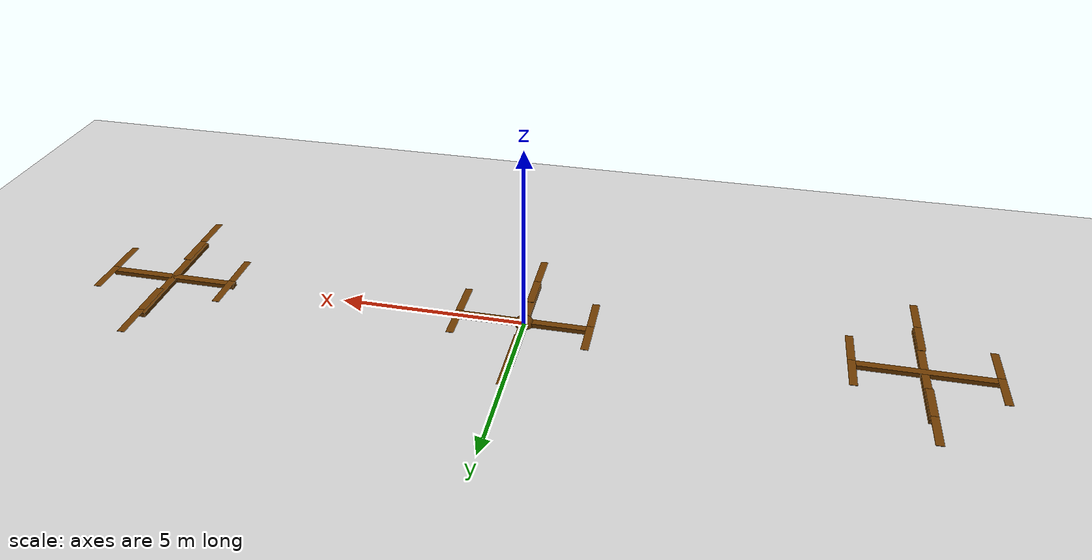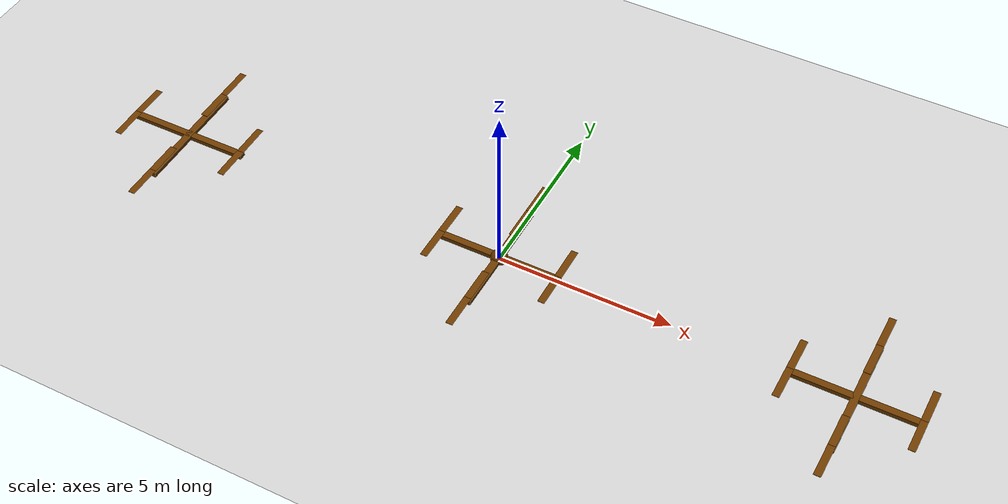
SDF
<?xml version="1.0" ?>
<sdf version="1.5">
  <world name="default">
    <physics type="ode">
      <gravity>0.0 0.0 -10.0</gravity>
      <ode>
        <solver>
          <type>quick</type>
          <iters>50</iters>
          <sor>0.8</sor>
        </solver>
        <constraints>
          <cfm>0.0</cfm>
          <erp>0.2</erp>
          <contact_max_correcting_vel>0.1</contact_max_correcting_vel>
          <contact_surface_layer>0.0</contact_surface_layer>
        </constraints>
      </ode>
      <real_time_factor>1</real_time_factor>
      <real_time_update_rate>0</real_time_update_rate>
      <max_step_size>0.001</max_step_size>
    </physics>
    <include>
      <uri>model://sun</uri>
    </include>

    <model name="ground_plane">
      <static>true</static>
      <link name="link">
        <collision name="collision">
          <geometry>
            <plane>
              <normal>0 0 1</normal>
              <size>1000 1000</size>
            </plane>
          </geometry>
          <surface>
            <friction>
              <ode>
                <mu>1</mu>
                <mu2>1</mu2>
              </ode>
            </friction>
          </surface>
        </collision>
        <visual name="visual">
          <cast_shadows>false</cast_shadows>
          <geometry>
            <plane>
              <normal>0 0 1</normal>
              <size>1000 1000</size>
            </plane>
          </geometry>
          <material>
            <script>
              <uri>file://media/materials/scripts/gazebo.material</uri>
              <name>Gazebo/Grey</name>
            </script>
          </material>
        </visual>
      </link>
    </model>

	<include>
		<uri>model://track_ball</uri>
		<pose>0 0 0 0 0 0</pose>
	</include>

	<include>
		<uri>model://quad_2292_1</uri>
		<pose>0 0 0 0 0 0</pose>
	</include>
	<include>
		<uri>model://quad_2292_2</uri>
		<pose>-10 0 0 0 0 0</pose>
	</include>
	<include>
		<uri>model://quad_2292_3</uri>
		<pose>10 0 0 0 0 0</pose>
	</include>
   </world>
</sdf>

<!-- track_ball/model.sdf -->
<sdf version="1.5">
	<model name="track_ball">
	  <pose>0 0 0.0 0 0 0</pose>
	  <static>false</static>

	  <link name="ball">
		<gravity>0</gravity>
		<pose>0 0 0 0 0 0</pose>
		<visual name="visual">
		  <geometry>
			<sphere>
			  <radius>0.25</radius>
			</sphere>
		  </geometry>
		  <material>
			<ambient>0.2 0.2 0.2 1.0</ambient>
			<diffuse>.421 0.225 0.0 1.0</diffuse>
		  </material>
		</visual>
	  </link>

	  <link name="x_axis">
		 <gravity>0</gravity>
		<pose>0.5 0 0 0 0 0</pose>
		<visual name="visual">
		  <geometry>
			<box>
			  <size>1 0.1 0.1</size>
			</box>
		  </geometry>
		  <material>
			<ambient>1.0 0.0 0.0 1.0</ambient>
			<diffuse>1.0 0.0 0.0 1.0</diffuse>
		  </material>
		</visual>
	  </link>

	  <link name="y_axis">
		<gravity>0</gravity>
		<pose>0 0.5 0 0 0 0</pose>
		<visual name="visual">
		  <geometry>
			<box>
			  <size>0.1 1 0.1</size>
			</box>
		  </geometry>
		  <material>
			<ambient>0.0 1.0 0.0 1.0</ambient>
			<diffuse>0.0 1.0 0.0 1.0</diffuse>
		  </material>
		</visual>
	  </link>

	  <link name="z_axis">
		<gravity>0</gravity>
		<pose>0 0 0.5 0 0 0</pose>
		<visual name="visual">
		  <geometry>
			<box>
			  <size>0.1 0.1 1</size>
			</box>
		  </geometry>
		  <material>
			<ambient>0.0 0.0 1.0 1.0</ambient>
			<diffuse>0.0 0.0 1.0 1.0</diffuse>
		  </material>
		</visual>
	  </link>

	  <joint name="x_joint" type="revolute">
		<parent>ball</parent>
		<child>x_axis</child>
		<pose>0.0 0.0 0.0 0.0 0.0 0.0</pose>
		<axis>
		  <limit>
			<lower>0</lower>
			<upper>0</upper>
		  </limit>
		  <xyz>1.0 0.0 0.0</xyz>
		</axis>
	  </joint>

	  <joint name="y_joint" type="revolute">
		<parent>ball</parent>
		<child>y_axis</child>
		<pose>0.0 0.0 0.0 0.0 0.0 0.0</pose>
		<axis>
		  <limit>
			<lower>0</lower>
			<upper>0</upper>
		  </limit>
		  <xyz>0.0 1.0 0.0</xyz>
		</axis>
	  </joint>

	  <joint name="z_joint" type="revolute">
		<parent>ball</parent>
		<child>z_axis</child>
		<pose>0.0 0.0 0.0 0.0 0.0 0.0</pose>
		<axis>
		  <limit>
			<lower>0</lower>
			<upper>0</upper>
		  </limit>
		  <xyz>0.0 0.0 1.0</xyz>
		</axis>
	  </joint>

	</model>
</sdf>

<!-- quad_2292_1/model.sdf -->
<sdf version="1.5">
	<model name="quad_2292_1">
	  <pose>0 0 0.1 0 0 0</pose>
	  <static>false</static>
	  <link name="body_1">
		<pose>0 0 0 0 0 0</pose>
		<inertial>
		  <pose>0.0 0.0 0.0 0.0 0.0 0.0</pose>
		  <inertia>
			<ixx>1.8</ixx>
			<ixy>0.0</ixy>
			<ixz>0.0</ixz>
			<iyy>10.8</iyy>
			<iyz>0.0</iyz>
			<izz>10.8</izz>
		  </inertia>
		  <mass>10.0</mass>
		</inertial>
		<collision name="collision">
		  <geometry>
			<box>
			  <size>3.6 0.2 0.2</size>
			</box>
		  </geometry>
		  <surface>
			<friction>
			  <ode>
				<mu>0.1</mu>
				<mu2>0.1</mu2>
			  </ode>
			</friction>
		  </surface>
		</collision>
		<visual name="visual">
		  <geometry>
			<box>
			  <size>3.6 0.2 0.2</size>
			</box>
		  </geometry>
		  <material>
			<ambient>0.2 0.2 0.2 1.0</ambient>
			<diffuse>.421 0.225 0.0 1.0</diffuse>
		  </material>
		</visual>
		<sensor name='imu_sensor' type='imu'>
		  <always_on>1</always_on>
		  <update_rate>1000</update_rate>
		  <imu>
			<noise>
			  <type>gaussian</type>
			  <rate>
				<mean>0</mean>
				<stddev>0.0002</stddev>
				<bias_mean>7.5e-06</bias_mean>
				<bias_stddev>8e-07</bias_stddev>
			  </rate>
			  <accel>
				<mean>0</mean>
				<stddev>0.017</stddev>
				<bias_mean>0.1</bias_mean>
				<bias_stddev>0.001</bias_stddev>
			  </accel>
			</noise>
		  </imu>
		  <pose>0 0 0 0 0 0</pose>
		</sensor>
	  </link>
	  <link name="body_2">
		<pose>0 0 0 0 0 0</pose>
		<inertial>
		  <pose>0.0 0.0 0.0 0.0 0.0 0.0</pose>
		  <inertia>
			<ixx>10.8</ixx>
			<ixy>0.0</ixy>
			<ixz>0.0</ixz>
			<iyy>1.8</iyy>
			<iyz>0.0</iyz>
			<izz>10.8</izz>
		  </inertia>
		  <mass>10.0</mass>
		</inertial>
		<collision name="collision">
		  <geometry>
			<box>
			  <size>0.2 3.6 0.2</size>
			</box>
		  </geometry>
		  <surface>
			<friction>
			  <ode>
				<mu>0.1</mu>
				<mu2>0.1</mu2>
			  </ode>
			</friction>
		  </surface>
		</collision>
		<visual name="visual">
		  <geometry>
			<box>
			  <size>0.2 3.6 0.2</size>
			</box>
		  </geometry>
		  <material>
			<ambient>0.2 0.2 0.2 1.0</ambient>
			<diffuse>.421 0.225 0.0 1.0</diffuse>
		  </material>
		</visual>
	  </link>
	  <joint name="body_joint" type="revolute">
		<parent>body_1</parent>
		<child>body_2</child>
		<pose>0.0 0.0 0.0 0.0 0.0 0.0</pose>
		<axis>
		  <limit>
			<lower>0</lower>
			<upper>0</upper>
		  </limit>
		  <xyz>0.0 0.0 1.0</xyz>
		  <dynamics>
			<damping>0.0001</damping>
		  </dynamics>
		</axis>
		<physics>
		  <ode>
			<cfm_damping>1</cfm_damping>
		  </ode>
		</physics>
	  </joint>

	<!-- Motor/Prop 1 -->
	  <link name="rod_1">
		<pose>-1.75 0 0.14 0 0 0</pose>
		<inertial>
		  <pose>0.0 0.0 0 0.0 0.0 0.0</pose>
		  <inertia>
			<ixx>0.012</ixx>
			<ixy>0.0</ixy>
			<ixz>0.0</ixz>
			<iyy>0.012</iyy>
			<iyz>0.0</iyz>
			<izz>0.0012</izz>
		  </inertia>
		  <mass>1.0</mass>
		</inertial>
		<collision name="collision">
		  <geometry>
			<box>
			  <size>0.02 0.02 0.08</size>
			</box>
		  </geometry>
		</collision>
		<visual name="visual">
		  <geometry>
			<box>
			  <size>0.02 0.02 0.08</size>
			</box>
		  </geometry>
		  <material>
			<ambient>0.3 0.3 0.3 1.0</ambient>
			<diffuse>.421 0.225 0.0 1.0</diffuse>
		  </material>
		</visual>
	  </link>
	  <link name="blade_1">
		<pose>-1.75 0 0.18 0 0 0</pose>
		<inertial>
		  <pose>0.0 0.25 0 0.0 0.0 0.0</pose>
		  <inertia>
			<ixx>0.0000465</ixx>
			<ixy>0.0</ixy>
			<ixz>0.0</ixz>
			<iyy>0.0000006</iyy>
			<iyz>0.0</iyz>
			<izz>0.0000470</izz>
		  </inertia>
		  <mass>0.01</mass>
		</inertial>
		<collision name="collision">
		  <pose>0.0 0.5 0 0.0 0.0 0.0</pose>
		  <geometry>
			<box>
			  <size>0.2 1.0 0.01</size>
			</box>
		  </geometry>
		</collision>
		<visual name="visual">
		  <pose>0.0 0.5 0 0.0 0.0 0.0</pose>
		  <geometry>
			<box>
			  <size>0.2 1.0 0.01</size>
			</box>
		  </geometry>
		  <material>
			<ambient>0.5 0.2 0.2 1.0</ambient>
			<diffuse>.421 0.225 0.0 1.0</diffuse>
		  </material>
		</visual>
	  </link>
	  <link name="blade_2">
		<pose>-1.75 0 0.18 0 0 3.141593</pose>
		<inertial>
		  <pose>0.0 0.25 0 0.0 0.0 0.0</pose>
		  <inertia>
			<ixx>0.0000465</ixx>
			<ixy>0.0</ixy>
			<ixz>0.0</ixz>
			<iyy>0.0000006</iyy>
			<iyz>0.0</iyz>
			<izz>0.0000470</izz>
		  </inertia>
		  <mass>0.01</mass>
		</inertial>
		<collision name="collision">
		  <pose>0.0 0.5 0 0.0 0.0 0.0</pose>
		  <geometry>
			<box>
			  <size>0.2 1.0 0.01</size>
			</box>
		  </geometry>
		</collision>
		<visual name="visual">
		  <pose>0.0 0.5 0 0.0 0.0 0</pose>
		  <geometry>
			<box>
			  <size>0.2 1.0 0.01</size>
			</box>
		  </geometry>
		  <material>
			<ambient>0.2 0.5 0.2 1.0</ambient>
			<diffuse>.421 0.225 0.0 1.0</diffuse>
		  </material>
		</visual>
	  </link>
	  <joint name="rod_1_joint" type="revolute">
		<parent>body_1</parent>
		<child>rod_1</child>
		<pose>0.0 0.0 0.0 0.0 0.0 0.0</pose>
		<axis>
		  <limit>
			<lower>-1e16</lower>
			<upper>1e16</upper>
		  </limit>
		  <xyz>0.0 0.0 -1.0</xyz>
		  <dynamics>
			<damping>0.0001</damping>
		  </dynamics>
		</axis>
		<physics>
		  <ode>
			<cfm_damping>1</cfm_damping>
		  </ode>
		</physics>
	  </joint>
	  <joint name="blade_1_joint" type="revolute">
		<parent>rod_1</parent>
		<child>blade_1</child>
		<pose>0.0 0.0 0.0 0.0 0.0 0.0</pose>
		<axis>
		  <limit>
			<lower>-0.0</lower>
			<upper>0.0</upper>
		  </limit>
		  <xyz>1.0 0.0 0.0</xyz>
		  <dynamics>
			<damping>1.000000</damping>
		  </dynamics>
		</axis>
		<physics>
		  <ode>
			<limit>
			  <cfm>0.004</cfm>
			  <erp>0.2</erp>
			</limit>
			<cfm_damping>1</cfm_damping>
		  </ode>
		</physics>
	  </joint>
	  <joint name="blade_2_joint" type="revolute">
		<parent>rod_1</parent>
		<child>blade_2</child>
		<pose>0.0 0.0 0.0 0.0 0.0 0.0</pose>
		<axis>
		  <limit>
			<lower>-0.0</lower>
			<upper>0.0</upper>
		  </limit>
		  <xyz>1.0 0.0 0.0</xyz>
		  <dynamics>
			<damping>1.000000</damping>
		  </dynamics>
		</axis>
		<physics>
		  <ode>
			<limit>
			  <cfm>0.004</cfm>
			  <erp>0.2</erp>
			</limit>
			<cfm_damping>1</cfm_damping>
		  </ode>
		</physics>
	  </joint>

	<!-- /Motor/Prop 1 -->

	<!-- Motor/Prop 2 -->
	  <link name="rod_2">
		<pose>1.75 0 0.14 0 0 0</pose>
		<inertial>
		  <pose>0.0 0.0 0 0.0 0.0 0.0</pose>
		  <inertia>
			<ixx>0.012</ixx>
			<ixy>0.0</ixy>
			<ixz>0.0</ixz>
			<iyy>0.012</iyy>
			<iyz>0.0</iyz>
			<izz>0.0012</izz>
		  </inertia>
		  <mass>1.0</mass>
		</inertial>
		<collision name="collision">
		  <geometry>
			<box>
			  <size>0.02 0.02 0.08</size>
			</box>
		  </geometry>
		</collision>
		<visual name="visual">
		  <geometry>
			<box>
			  <size>0.02 0.02 0.08</size>
			</box>
		  </geometry>
		  <material>
			<ambient>0.3 0.3 0.3 1.0</ambient>
			<diffuse>.421 0.225 0.0 1.0</diffuse>
		  </material>
		</visual>
	  </link>
	  <link name="blade_3">
		<pose>1.75 0 0.18 0 0 0</pose>
		<inertial>
		  <pose>0.0 0.25 0 0.0 0.0 0.0</pose>
		  <inertia>
			<ixx>0.0000465</ixx>
			<ixy>0.0</ixy>
			<ixz>0.0</ixz>
			<iyy>0.0000006</iyy>
			<iyz>0.0</iyz>
			<izz>0.0000470</izz>
		  </inertia>
		  <mass>0.01</mass>
		</inertial>
		<collision name="collision">
		  <pose>0.0 0.5 0 0.0 0.0 0.0</pose>
		  <geometry>
			<box>
			  <size>0.2 1.0 0.01</size>
			</box>
		  </geometry>
		</collision>
		<visual name="visual">
		  <pose>0.0 0.5 0 0.0 0.0 0.0</pose>
		  <geometry>
			<box>
			  <size>0.2 1.0 0.01</size>
			</box>
		  </geometry>
		  <material>
			<ambient>0.5 0.2 0.2 1.0</ambient>
			<diffuse>.421 0.225 0.0 1.0</diffuse>
		  </material>
		</visual>
	  </link>
	  <link name="blade_4">
		<pose>1.75 0 0.18 0 0 3.141593</pose>
		<inertial>
		  <pose>0.0 0.25 0 0.0 0.0 0.0</pose>
		  <inertia>
			<ixx>0.0000465</ixx>
			<ixy>0.0</ixy>
			<ixz>0.0</ixz>
			<iyy>0.0000006</iyy>
			<iyz>0.0</iyz>
			<izz>0.0000470</izz>
		  </inertia>
		  <mass>0.01</mass>
		</inertial>
		<collision name="collision">
		  <pose>0.0 0.5 0 0.0 0.0 0.0</pose>
		  <geometry>
			<box>
			  <size>0.2 1.0 0.01</size>
			</box>
		  </geometry>
		</collision>
		<visual name="visual">
		  <pose>0.0 0.5 0 0.0 0.0 0</pose>
		  <geometry>
			<box>
			  <size>0.2 1.0 0.01</size>
			</box>
		  </geometry>
		  <material>
			<ambient>0.2 0.5 0.2 1.0</ambient>
			<diffuse>.421 0.225 0.0 1.0</diffuse>
		  </material>
		</visual>
	  </link>
	  <joint name="rod_2_joint" type="revolute">
		<parent>body_1</parent>
		<child>rod_2</child>
		<pose>0.0 0.0 0.0 0.0 0.0 0.0</pose>
		<axis>
		  <limit>
			<lower>-1e16</lower>
			<upper>1e16</upper>
		  </limit>
		  <xyz>0.0 0.0 -1.0</xyz>
		  <dynamics>
			<damping>0.0001</damping>
		  </dynamics>
		</axis>
		<physics>
		  <ode>
			<cfm_damping>1</cfm_damping>
		  </ode>
		</physics>
	  </joint>
	  <joint name="blade_3_joint" type="revolute">
		<parent>rod_2</parent>
		<child>blade_3</child>
		<pose>0.0 0.0 0.0 0.0 0.0 0.0</pose>
		<axis>
		  <limit>
			<lower>-0.0</lower>
			<upper>0.0</upper>
		  </limit>
		  <xyz>1.0 0.0 0.0</xyz>
		  <dynamics>
			<damping>1.000000</damping>
		  </dynamics>
		</axis>
		<physics>
		  <ode>
			<limit>
			  <cfm>0.004</cfm>
			  <erp>0.2</erp>
			</limit>
			<cfm_damping>1</cfm_damping>
		  </ode>
		</physics>
	  </joint>
	  <joint name="blade_4_joint" type="revolute">
		<parent>rod_2</parent>
		<child>blade_4</child>
		<pose>0.0 0.0 0.0 0.0 0.0 0.0</pose>
		<axis>
		  <limit>
			<lower>-0.0</lower>
			<upper>0.0</upper>
		  </limit>
		  <xyz>1.0 0.0 0.0</xyz>
		  <dynamics>
			<damping>1.000000</damping>
		  </dynamics>
		</axis>
		<physics>
		  <ode>
			<limit>
			  <cfm>0.004</cfm>
			  <erp>0.2</erp>
			</limit>
			<cfm_damping>1</cfm_damping>
		  </ode>
		</physics>
	  </joint>
	<!-- /Motor/Prop 2 -->
	  <plugin name="quad_2292_1_blade_1" filename="libLiftDragPlugin.so">
		<a0>0.1</a0>
		<cla>0.100</cla>
		<cda>0.01</cda>
		<cma>0.00</cma>
		<alpha_stall>0.2</alpha_stall>
		<cla_stall>-0.2</cla_stall>
		<cda_stall>1.0</cda_stall>
		<cma_stall>0.0</cma_stall>
		<cp>0.0 0.5 0</cp>
		<area>0.2</area>
		<air_density>1.2041</air_density>
		<forward>1 0 0</forward>
		<upward>0 0 1</upward>
		<link_name>quad_2292_1::blade_1</link_name>
	  </plugin>
	  <plugin name="quad_2292_1_blade_2" filename="libLiftDragPlugin.so">
		<a0>0.1</a0>
		<cla>0.100</cla>
		<cda>0.01</cda>
		<cma>0.00</cma>
		<alpha_stall>0.2</alpha_stall>
		<cla_stall>-0.2</cla_stall>
		<cda_stall>1.0</cda_stall>
		<cma_stall>0.0</cma_stall>
		<cp>0.0 0.5 0</cp>
		<area>0.2</area>
		<air_density>1.2041</air_density>
		<forward>1 0 0</forward>
		<upward>0 0 1</upward>
		<link_name>quad_2292_1::blade_2</link_name>
	  </plugin>
	  <plugin name="quad_2292_1_blade_3" filename="libLiftDragPlugin.so">
		<a0>0.1</a0>
		<cla>0.100</cla>
		<cda>0.01</cda>
		<cma>0.00</cma>
		<alpha_stall>0.2</alpha_stall>
		<cla_stall>-0.2</cla_stall>
		<cda_stall>1.0</cda_stall>
		<cma_stall>0.0</cma_stall>
		<cp>0.0 0.5 0</cp>
		<area>0.2</area>
		<air_density>1.2041</air_density>
		<forward>1 0 0</forward>
		<upward>0 0 1</upward>
		<link_name>quad_2292_1::blade_3</link_name>
	  </plugin>
	  <plugin name="quad_2292_1_blade_4" filename="libLiftDragPlugin.so">
		<a0>0.1</a0>
		<cla>0.100</cla>
		<cda>0.01</cda>
		<cma>0.00</cma>
		<alpha_stall>0.2</alpha_stall>
		<cla_stall>-0.2</cla_stall>
		<cda_stall>1.0</cda_stall>
		<cma_stall>0.0</cma_stall>
		<cp>0.0 0.5 0</cp>
		<area>0.2</area>
		<air_density>1.2041</air_density>
		<forward>1 0 0</forward>
		<upward>0 0 1</upward>
		<link_name>quad_2292_1::blade_4</link_name>
	  </plugin>

	<!-- Motor/Prop 3 -->
	  <link name="rod_3">
		<pose>0 -1.75 0.14 0 0 0</pose>
		<inertial>
		  <pose>0.0 0.0 0 0.0 0.0 0.0</pose>
		  <inertia>
			<ixx>0.012</ixx>
			<ixy>0.0</ixy>
			<ixz>0.0</ixz>
			<iyy>0.012</iyy>
			<iyz>0.0</iyz>
			<izz>0.0012</izz>
		  </inertia>
		  <mass>1.0</mass>
		</inertial>
		<collision name="collision">
		  <geometry>
			<box>
			  <size>0.02 0.02 0.08</size>
			</box>
		  </geometry>
		</collision>
		<visual name="visual">
		  <geometry>
			<box>
			  <size>0.02 0.02 0.08</size>
			</box>
		  </geometry>
		  <material>
			<ambient>0.3 0.3 0.3 1.0</ambient>
			<diffuse>.421 0.225 0.0 1.0</diffuse>
		  </material>
		</visual>
	  </link>
	  <link name="blade_5">
		<pose>0 -1.75 0.18 0 0 0</pose>
		<inertial>
		  <pose>0.0 0.25 0 0.0 0.0 0.0</pose>
		  <inertia>
			<ixx>0.0000465</ixx>
			<ixy>0.0</ixy>
			<ixz>0.0</ixz>
			<iyy>0.0000006</iyy>
			<iyz>0.0</iyz>
			<izz>0.0000470</izz>
		  </inertia>
		  <mass>0.01</mass>
		</inertial>
		<collision name="collision">
		  <pose>0.0 0.5 0 0.0 0.0 0.0</pose>
		  <geometry>
			<box>
			  <size>0.2 1.0 0.01</size>
			</box>
		  </geometry>
		</collision>
		<visual name="visual">
		  <pose>0.0 0.5 0 0.0 0.0 0.0</pose>
		  <geometry>
			<box>
			  <size>0.2 1.0 0.01</size>
			</box>
		  </geometry>
		  <material>
			<ambient>0.5 0.2 0.2 1.0</ambient>
			<diffuse>.421 0.225 0.0 1.0</diffuse>
		  </material>
		</visual>
	  </link>
	  <link name="blade_6">
		<pose>0 -1.75 0.18 0 0 3.141593</pose>
		<inertial>
		  <pose>0.0 0.25 0 0.0 0.0 0.0</pose>
		  <inertia>
			<ixx>0.0000465</ixx>
			<ixy>0.0</ixy>
			<ixz>0.0</ixz>
			<iyy>0.0000006</iyy>
			<iyz>0.0</iyz>
			<izz>0.0000470</izz>
		  </inertia>
		  <mass>0.01</mass>
		</inertial>
		<collision name="collision">
		  <pose>0.0 0.5 0 0.0 0.0 0.0</pose>
		  <geometry>
			<box>
			  <size>0.2 1.0 0.01</size>
			</box>
		  </geometry>
		</collision>
		<visual name="visual">
		  <pose>0.0 0.5 0 0.0 0.0 0</pose>
		  <geometry>
			<box>
			  <size>0.2 1.0 0.01</size>
			</box>
		  </geometry>
		  <material>
			<ambient>0.2 0.5 0.2 1.0</ambient>
			<diffuse>.421 0.225 0.0 1.0</diffuse>
		  </material>
		</visual>
	  </link>
	  <joint name="rod_3_joint" type="revolute">
		<parent>body_2</parent>
		<child>rod_3</child>
		<pose>0.0 0.0 0.0 0.0 0.0 0.0</pose>
		<axis>
		  <limit>
			<lower>-1e16</lower>
			<upper>1e16</upper>
		  </limit>
		  <xyz>0.0 0.0 1.0</xyz>
		  <dynamics>
			<damping>0.0001</damping>
		  </dynamics>
		</axis>
		<physics>
		  <ode>
			<cfm_damping>1</cfm_damping>
		  </ode>
		</physics>
	  </joint>
	  <joint name="blade_5_joint" type="revolute">
		<parent>rod_3</parent>
		<child>blade_5</child>
		<pose>0.0 0.0 0.0 0.0 0.0 0.0</pose>
		<axis>
		  <limit>
			<lower>-0.0</lower>
			<upper>0.0</upper>
		  </limit>
		  <xyz>1.0 0.0 0.0</xyz>
		  <dynamics>
			<damping>1.000000</damping>
		  </dynamics>
		</axis>
		<physics>
		  <ode>
			<limit>
			  <cfm>0.004</cfm>
			  <erp>0.2</erp>
			</limit>
			<cfm_damping>1</cfm_damping>
		  </ode>
		</physics>
	  </joint>
	  <joint name="blade_6_joint" type="revolute">
		<parent>rod_3</parent>
		<child>blade_6</child>
		<pose>0.0 0.0 0.0 0.0 0.0 0.0</pose>
		<axis>
		  <limit>
			<lower>-0.0</lower>
			<upper>0.0</upper>
		  </limit>
		  <xyz>1.0 0.0 0.0</xyz>
		  <dynamics>
			<damping>1.000000</damping>
		  </dynamics>
		</axis>
		<physics>
		  <ode>
			<limit>
			  <cfm>0.004</cfm>
			  <erp>0.2</erp>
			</limit>
			<cfm_damping>1</cfm_damping>
		  </ode>
		</physics>
	  </joint>
	<!-- /Motor/Prop 3 -->

	<!-- Motor/Prop 4 -->
	  <link name="rod_4">
		<pose>0 1.75 0.14 0 0 0</pose>
		<inertial>
		  <pose>0.0 0.0 0 0.0 0.0 0.0</pose>
		  <inertia>
			<ixx>0.012</ixx>
			<ixy>0.0</ixy>
			<ixz>0.0</ixz>
			<iyy>0.012</iyy>
			<iyz>0.0</iyz>
			<izz>0.0012</izz>
		  </inertia>
		  <mass>1.0</mass>
		</inertial>
		<collision name="collision">
		  <geometry>
			<box>
			  <size>0.02 0.02 0.08</size>
			</box>
		  </geometry>
		</collision>
		<visual name="visual">
		  <geometry>
			<box>
			  <size>0.02 0.02 0.08</size>
			</box>
		  </geometry>
		  <material>
			<ambient>0.3 0.3 0.3 1.0</ambient>
			<diffuse>.421 0.225 0.0 1.0</diffuse>
		  </material>
		</visual>
	  </link>
	  <link name="blade_7">
		<pose>0 1.75 0.18 0 0 0</pose>
		<inertial>
		  <pose>0.0 0.25 0 0.0 0.0 0.0</pose>
		  <inertia>
			<ixx>0.0000465</ixx>
			<ixy>0.0</ixy>
			<ixz>0.0</ixz>
			<iyy>0.0000006</iyy>
			<iyz>0.0</iyz>
			<izz>0.0000470</izz>
		  </inertia>
		  <mass>0.01</mass>
		</inertial>
		<collision name="collision">
		  <pose>0.0 0.5 0 0.0 0.0 0.0</pose>
		  <geometry>
			<box>
			  <size>0.2 1.0 0.01</size>
			</box>
		  </geometry>
		</collision>
		<visual name="visual">
		  <pose>0.0 0.5 0 0.0 0.0 0.0</pose>
		  <geometry>
			<box>
			  <size>0.2 1.0 0.01</size>
			</box>
		  </geometry>
		  <material>
			<ambient>0.5 0.2 0.2 1.0</ambient>
			<diffuse>.421 0.225 0.0 1.0</diffuse>
		  </material>
		</visual>
	  </link>
	  <link name="blade_8">
		<pose>0 1.75 0.18 0 0 3.141593</pose>
		<inertial>
		  <pose>0.0 0.25 0 0.0 0.0 0.0</pose>
		  <inertia>
			<ixx>0.0000465</ixx>
			<ixy>0.0</ixy>
			<ixz>0.0</ixz>
			<iyy>0.0000006</iyy>
			<iyz>0.0</iyz>
			<izz>0.0000470</izz>
		  </inertia>
		  <mass>0.01</mass>
		</inertial>
		<collision name="collision">
		  <pose>0.0 0.5 0 0.0 0.0 0.0</pose>
		  <geometry>
			<box>
			  <size>0.2 1.0 0.01</size>
			</box>
		  </geometry>
		</collision>
		<visual name="visual">
		  <pose>0.0 0.5 0 0.0 0.0 0</pose>
		  <geometry>
			<box>
			  <size>0.2 1.0 0.01</size>
			</box>
		  </geometry>
		  <material>
			<ambient>0.2 0.5 0.2 1.0</ambient>
			<diffuse>.421 0.225 0.0 1.0</diffuse>
		  </material>
		</visual>
	  </link>
	  <joint name="rod_4_joint" type="revolute">
		<parent>body_2</parent>
		<child>rod_4</child>
		<pose>0.0 0.0 0.0 0.0 0.0 0.0</pose>
		<axis>
		  <limit>
			<lower>-1e16</lower>
			<upper>1e16</upper>
		  </limit>
		  <xyz>0.0 0.0 1.0</xyz>
		  <dynamics>
			<damping>0.0001</damping>
		  </dynamics>
		</axis>
		<physics>
		  <ode>
			<cfm_damping>1</cfm_damping>
		  </ode>
		</physics>
	  </joint>
	  <joint name="blade_7_joint" type="revolute">
		<parent>rod_4</parent>
		<child>blade_7</child>
		<pose>0.0 0.0 0.0 0.0 0.0 0.0</pose>
		<axis>
		  <limit>
			<lower>-0.0</lower>
			<upper>0.0</upper>
		  </limit>
		  <xyz>1.0 0.0 0.0</xyz>
		  <dynamics>
			<damping>1.000000</damping>
		  </dynamics>
		</axis>
		<physics>
		  <ode>
			<limit>
			  <cfm>0.004</cfm>
			  <erp>0.2</erp>
			</limit>
			<cfm_damping>1</cfm_damping>
		  </ode>
		</physics>
	  </joint>
	  <joint name="blade_8_joint" type="revolute">
		<parent>rod_4</parent>
		<child>blade_8</child>
		<pose>0.0 0.0 0.0 0.0 0.0 0.0</pose>
		<axis>
		  <limit>
			<lower>-0.0</lower>
			<upper>0.0</upper>
		  </limit>
		  <xyz>1.0 0.0 0.0</xyz>
		  <dynamics>
			<damping>1.000000</damping>
		  </dynamics>
		</axis>
		<physics>
		  <ode>
			<limit>
			  <cfm>0.004</cfm>
			  <erp>0.2</erp>
			</limit>
			<cfm_damping>1</cfm_damping>
		  </ode>
		</physics>
	  </joint>
	<!-- /Motor/Prop 4 -->
	  <plugin name="quad_2292_1_blade_5" filename="libLiftDragPlugin.so">
		<a0>0.1</a0>
		<cla>0.100</cla>
		<cda>0.01</cda>
		<cma>0.00</cma>
		<alpha_stall>0.2</alpha_stall>
		<cla_stall>-0.2</cla_stall>
		<cda_stall>1.0</cda_stall>
		<cma_stall>0.0</cma_stall>
		<cp>0.0 0.5 0</cp>
		<area>0.2</area>
		<air_density>1.2041</air_density>
		<forward>-1 0 0</forward>
		<upward>0 0 1</upward>
		<link_name>quad_2292_1::blade_5</link_name>
	  </plugin>
	  <plugin name="quad_2292_1_blade_6" filename="libLiftDragPlugin.so">
		<a0>0.1</a0>
		<cla>0.100</cla>
		<cda>0.01</cda>
		<cma>0.00</cma>
		<alpha_stall>0.2</alpha_stall>
		<cla_stall>-0.2</cla_stall>
		<cda_stall>1.0</cda_stall>
		<cma_stall>0.0</cma_stall>
		<cp>0.0 0.5 0</cp>
		<area>0.2</area>
		<air_density>1.2041</air_density>
		<forward>-1 0 0</forward>
		<upward>0 0 1</upward>
		<link_name>quad_2292_1::blade_6</link_name>
	  </plugin>
	  <plugin name="quad_2292_1_blade_7" filename="libLiftDragPlugin.so">
		<a0>0.1</a0>
		<cla>0.100</cla>
		<cda>0.01</cda>
		<cma>0.00</cma>
		<alpha_stall>0.2</alpha_stall>
		<cla_stall>-0.2</cla_stall>
		<cda_stall>1.0</cda_stall>
		<cma_stall>0.0</cma_stall>
		<cp>0.0 0.5 0</cp>
		<area>0.2</area>
		<air_density>1.2041</air_density>
		<forward>-1 0 0</forward>
		<upward>0 0 1</upward>
		<link_name>quad_2292_1::blade_7</link_name>
	  </plugin>
	  <plugin name="quad_2292_1_blade_8" filename="libLiftDragPlugin.so">
		<a0>0.1</a0>
		<cla>0.100</cla>
		<cda>0.01</cda>
		<cma>0.00</cma>
		<alpha_stall>0.2</alpha_stall>
		<cla_stall>-0.2</cla_stall>
		<cda_stall>1.0</cda_stall>
		<cma_stall>0.0</cma_stall>
		<cp>0.0 0.5 0</cp>
		<area>0.2</area>
		<air_density>1.2041</air_density>
		<forward>-1 0 0</forward>
		<upward>0 0 1</upward>
		<link_name>quad_2292_1::blade_8</link_name>
	  </plugin>

	</model>
</sdf>

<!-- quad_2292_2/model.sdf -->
<sdf version="1.5">
	<model name="quad_2292_2">
	  <pose>0 0 0.1 0 0 0</pose>
	  <static>false</static>
	  <link name="body_1">
		<pose>0 0 0 0 0 0</pose>
		<inertial>
		  <pose>0.0 0.0 0.0 0.0 0.0 0.0</pose>
		  <inertia>
			<ixx>1.8</ixx>
			<ixy>0.0</ixy>
			<ixz>0.0</ixz>
			<iyy>10.8</iyy>
			<iyz>0.0</iyz>
			<izz>10.8</izz>
		  </inertia>
		  <mass>10.0</mass>
		</inertial>
		<collision name="collision">
		  <geometry>
			<box>
			  <size>3.6 0.2 0.2</size>
			</box>
		  </geometry>
		  <surface>
			<friction>
			  <ode>
				<mu>0.1</mu>
				<mu2>0.1</mu2>
			  </ode>
			</friction>
		  </surface>
		</collision>
		<visual name="visual">
		  <geometry>
			<box>
			  <size>3.6 0.2 0.2</size>
			</box>
		  </geometry>
		  <material>
			<ambient>0.2 0.2 0.2 1.0</ambient>
			<diffuse>.421 0.225 0.0 1.0</diffuse>
		  </material>
		</visual>
		<sensor name='imu_sensor' type='imu'>
		  <always_on>1</always_on>
		  <update_rate>1000</update_rate>
		  <imu>
			<noise>
			  <type>gaussian</type>
			  <rate>
				<mean>0</mean>
				<stddev>0.0002</stddev>
				<bias_mean>7.5e-06</bias_mean>
				<bias_stddev>8e-07</bias_stddev>
			  </rate>
			  <accel>
				<mean>0</mean>
				<stddev>0.017</stddev>
				<bias_mean>0.1</bias_mean>
				<bias_stddev>0.001</bias_stddev>
			  </accel>
			</noise>
		  </imu>
		  <pose>0 0 0 0 0 0</pose>
		</sensor>
	  </link>
	  <link name="body_2">
		<pose>0 0 0 0 0 0</pose>
		<inertial>
		  <pose>0.0 0.0 0.0 0.0 0.0 0.0</pose>
		  <inertia>
			<ixx>10.8</ixx>
			<ixy>0.0</ixy>
			<ixz>0.0</ixz>
			<iyy>1.8</iyy>
			<iyz>0.0</iyz>
			<izz>10.8</izz>
		  </inertia>
		  <mass>10.0</mass>
		</inertial>
		<collision name="collision">
		  <geometry>
			<box>
			  <size>0.2 3.6 0.2</size>
			</box>
		  </geometry>
		  <surface>
			<friction>
			  <ode>
				<mu>0.1</mu>
				<mu2>0.1</mu2>
			  </ode>
			</friction>
		  </surface>
		</collision>
		<visual name="visual">
		  <geometry>
			<box>
			  <size>0.2 3.6 0.2</size>
			</box>
		  </geometry>
		  <material>
			<ambient>0.2 0.2 0.2 1.0</ambient>
			<diffuse>.421 0.225 0.0 1.0</diffuse>
		  </material>
		</visual>
	  </link>
	  <joint name="body_joint" type="revolute">
		<parent>body_1</parent>
		<child>body_2</child>
		<pose>0.0 0.0 0.0 0.0 0.0 0.0</pose>
		<axis>
		  <limit>
			<lower>0</lower>
			<upper>0</upper>
		  </limit>
		  <xyz>0.0 0.0 1.0</xyz>
		  <dynamics>
			<damping>0.0001</damping>
		  </dynamics>
		</axis>
		<physics>
		  <ode>
			<cfm_damping>1</cfm_damping>
		  </ode>
		</physics>
	  </joint>

	<!-- Motor/Prop 1 -->
	  <link name="rod_1">
		<pose>-1.75 0 0.14 0 0 0</pose>
		<inertial>
		  <pose>0.0 0.0 0 0.0 0.0 0.0</pose>
		  <inertia>
			<ixx>0.012</ixx>
			<ixy>0.0</ixy>
			<ixz>0.0</ixz>
			<iyy>0.012</iyy>
			<iyz>0.0</iyz>
			<izz>0.0012</izz>
		  </inertia>
		  <mass>1.0</mass>
		</inertial>
		<collision name="collision">
		  <geometry>
			<box>
			  <size>0.02 0.02 0.08</size>
			</box>
		  </geometry>
		</collision>
		<visual name="visual">
		  <geometry>
			<box>
			  <size>0.02 0.02 0.08</size>
			</box>
		  </geometry>
		  <material>
			<ambient>0.3 0.3 0.3 1.0</ambient>
			<diffuse>.421 0.225 0.0 1.0</diffuse>
		  </material>
		</visual>
	  </link>
	  <link name="blade_1">
		<pose>-1.75 0 0.18 0 0 0</pose>
		<inertial>
		  <pose>0.0 0.25 0 0.0 0.0 0.0</pose>
		  <inertia>
			<ixx>0.0000465</ixx>
			<ixy>0.0</ixy>
			<ixz>0.0</ixz>
			<iyy>0.0000006</iyy>
			<iyz>0.0</iyz>
			<izz>0.0000470</izz>
		  </inertia>
		  <mass>0.01</mass>
		</inertial>
		<collision name="collision">
		  <pose>0.0 0.5 0 0.0 0.0 0.0</pose>
		  <geometry>
			<box>
			  <size>0.2 1.0 0.01</size>
			</box>
		  </geometry>
		</collision>
		<visual name="visual">
		  <pose>0.0 0.5 0 0.0 0.0 0.0</pose>
		  <geometry>
			<box>
			  <size>0.2 1.0 0.01</size>
			</box>
		  </geometry>
		  <material>
			<ambient>0.5 0.2 0.2 1.0</ambient>
			<diffuse>.421 0.225 0.0 1.0</diffuse>
		  </material>
		</visual>
	  </link>
	  <link name="blade_2">
		<pose>-1.75 0 0.18 0 0 3.141593</pose>
		<inertial>
		  <pose>0.0 0.25 0 0.0 0.0 0.0</pose>
		  <inertia>
			<ixx>0.0000465</ixx>
			<ixy>0.0</ixy>
			<ixz>0.0</ixz>
			<iyy>0.0000006</iyy>
			<iyz>0.0</iyz>
			<izz>0.0000470</izz>
		  </inertia>
		  <mass>0.01</mass>
		</inertial>
		<collision name="collision">
		  <pose>0.0 0.5 0 0.0 0.0 0.0</pose>
		  <geometry>
			<box>
			  <size>0.2 1.0 0.01</size>
			</box>
		  </geometry>
		</collision>
		<visual name="visual">
		  <pose>0.0 0.5 0 0.0 0.0 0</pose>
		  <geometry>
			<box>
			  <size>0.2 1.0 0.01</size>
			</box>
		  </geometry>
		  <material>
			<ambient>0.2 0.5 0.2 1.0</ambient>
			<diffuse>.421 0.225 0.0 1.0</diffuse>
		  </material>
		</visual>
	  </link>
	  <joint name="rod_1_joint" type="revolute">
		<parent>body_1</parent>
		<child>rod_1</child>
		<pose>0.0 0.0 0.0 0.0 0.0 0.0</pose>
		<axis>
		  <limit>
			<lower>-1e16</lower>
			<upper>1e16</upper>
		  </limit>
		  <xyz>0.0 0.0 -1.0</xyz>
		  <dynamics>
			<damping>0.0001</damping>
		  </dynamics>
		</axis>
		<physics>
		  <ode>
			<cfm_damping>1</cfm_damping>
		  </ode>
		</physics>
	  </joint>
	  <joint name="blade_1_joint" type="revolute">
		<parent>rod_1</parent>
		<child>blade_1</child>
		<pose>0.0 0.0 0.0 0.0 0.0 0.0</pose>
		<axis>
		  <limit>
			<lower>-0.0</lower>
			<upper>0.0</upper>
		  </limit>
		  <xyz>1.0 0.0 0.0</xyz>
		  <dynamics>
			<damping>1.000000</damping>
		  </dynamics>
		</axis>
		<physics>
		  <ode>
			<limit>
			  <cfm>0.004</cfm>
			  <erp>0.2</erp>
			</limit>
			<cfm_damping>1</cfm_damping>
		  </ode>
		</physics>
	  </joint>
	  <joint name="blade_2_joint" type="revolute">
		<parent>rod_1</parent>
		<child>blade_2</child>
		<pose>0.0 0.0 0.0 0.0 0.0 0.0</pose>
		<axis>
		  <limit>
			<lower>-0.0</lower>
			<upper>0.0</upper>
		  </limit>
		  <xyz>1.0 0.0 0.0</xyz>
		  <dynamics>
			<damping>1.000000</damping>
		  </dynamics>
		</axis>
		<physics>
		  <ode>
			<limit>
			  <cfm>0.004</cfm>
			  <erp>0.2</erp>
			</limit>
			<cfm_damping>1</cfm_damping>
		  </ode>
		</physics>
	  </joint>

	<!-- /Motor/Prop 1 -->

	<!-- Motor/Prop 2 -->
	  <link name="rod_2">
		<pose>1.75 0 0.14 0 0 0</pose>
		<inertial>
		  <pose>0.0 0.0 0 0.0 0.0 0.0</pose>
		  <inertia>
			<ixx>0.012</ixx>
			<ixy>0.0</ixy>
			<ixz>0.0</ixz>
			<iyy>0.012</iyy>
			<iyz>0.0</iyz>
			<izz>0.0012</izz>
		  </inertia>
		  <mass>1.0</mass>
		</inertial>
		<collision name="collision">
		  <geometry>
			<box>
			  <size>0.02 0.02 0.08</size>
			</box>
		  </geometry>
		</collision>
		<visual name="visual">
		  <geometry>
			<box>
			  <size>0.02 0.02 0.08</size>
			</box>
		  </geometry>
		  <material>
			<ambient>0.3 0.3 0.3 1.0</ambient>
			<diffuse>.421 0.225 0.0 1.0</diffuse>
		  </material>
		</visual>
	  </link>
	  <link name="blade_3">
		<pose>1.75 0 0.18 0 0 0</pose>
		<inertial>
		  <pose>0.0 0.25 0 0.0 0.0 0.0</pose>
		  <inertia>
			<ixx>0.0000465</ixx>
			<ixy>0.0</ixy>
			<ixz>0.0</ixz>
			<iyy>0.0000006</iyy>
			<iyz>0.0</iyz>
			<izz>0.0000470</izz>
		  </inertia>
		  <mass>0.01</mass>
		</inertial>
		<collision name="collision">
		  <pose>0.0 0.5 0 0.0 0.0 0.0</pose>
		  <geometry>
			<box>
			  <size>0.2 1.0 0.01</size>
			</box>
		  </geometry>
		</collision>
		<visual name="visual">
		  <pose>0.0 0.5 0 0.0 0.0 0.0</pose>
		  <geometry>
			<box>
			  <size>0.2 1.0 0.01</size>
			</box>
		  </geometry>
		  <material>
			<ambient>0.5 0.2 0.2 1.0</ambient>
			<diffuse>.421 0.225 0.0 1.0</diffuse>
		  </material>
		</visual>
	  </link>
	  <link name="blade_4">
		<pose>1.75 0 0.18 0 0 3.141593</pose>
		<inertial>
		  <pose>0.0 0.25 0 0.0 0.0 0.0</pose>
		  <inertia>
			<ixx>0.0000465</ixx>
			<ixy>0.0</ixy>
			<ixz>0.0</ixz>
			<iyy>0.0000006</iyy>
			<iyz>0.0</iyz>
			<izz>0.0000470</izz>
		  </inertia>
		  <mass>0.01</mass>
		</inertial>
		<collision name="collision">
		  <pose>0.0 0.5 0 0.0 0.0 0.0</pose>
		  <geometry>
			<box>
			  <size>0.2 1.0 0.01</size>
			</box>
		  </geometry>
		</collision>
		<visual name="visual">
		  <pose>0.0 0.5 0 0.0 0.0 0</pose>
		  <geometry>
			<box>
			  <size>0.2 1.0 0.01</size>
			</box>
		  </geometry>
		  <material>
			<ambient>0.2 0.5 0.2 1.0</ambient>
			<diffuse>.421 0.225 0.0 1.0</diffuse>
		  </material>
		</visual>
	  </link>
	  <joint name="rod_2_joint" type="revolute">
		<parent>body_1</parent>
		<child>rod_2</child>
		<pose>0.0 0.0 0.0 0.0 0.0 0.0</pose>
		<axis>
		  <limit>
			<lower>-1e16</lower>
			<upper>1e16</upper>
		  </limit>
		  <xyz>0.0 0.0 -1.0</xyz>
		  <dynamics>
			<damping>0.0001</damping>
		  </dynamics>
		</axis>
		<physics>
		  <ode>
			<cfm_damping>1</cfm_damping>
		  </ode>
		</physics>
	  </joint>
	  <joint name="blade_3_joint" type="revolute">
		<parent>rod_2</parent>
		<child>blade_3</child>
		<pose>0.0 0.0 0.0 0.0 0.0 0.0</pose>
		<axis>
		  <limit>
			<lower>-0.0</lower>
			<upper>0.0</upper>
		  </limit>
		  <xyz>1.0 0.0 0.0</xyz>
		  <dynamics>
			<damping>1.000000</damping>
		  </dynamics>
		</axis>
		<physics>
		  <ode>
			<limit>
			  <cfm>0.004</cfm>
			  <erp>0.2</erp>
			</limit>
			<cfm_damping>1</cfm_damping>
		  </ode>
		</physics>
	  </joint>
	  <joint name="blade_4_joint" type="revolute">
		<parent>rod_2</parent>
		<child>blade_4</child>
		<pose>0.0 0.0 0.0 0.0 0.0 0.0</pose>
		<axis>
		  <limit>
			<lower>-0.0</lower>
			<upper>0.0</upper>
		  </limit>
		  <xyz>1.0 0.0 0.0</xyz>
		  <dynamics>
			<damping>1.000000</damping>
		  </dynamics>
		</axis>
		<physics>
		  <ode>
			<limit>
			  <cfm>0.004</cfm>
			  <erp>0.2</erp>
			</limit>
			<cfm_damping>1</cfm_damping>
		  </ode>
		</physics>
	  </joint>
	<!-- /Motor/Prop 2 -->
	  <plugin name="quad_2292_2_blade_1" filename="libLiftDragPlugin.so">
		<a0>0.1</a0>
		<cla>0.100</cla>
		<cda>0.01</cda>
		<cma>0.00</cma>
		<alpha_stall>0.2</alpha_stall>
		<cla_stall>-0.2</cla_stall>
		<cda_stall>1.0</cda_stall>
		<cma_stall>0.0</cma_stall>
		<cp>0.0 0.5 0</cp>
		<area>0.2</area>
		<air_density>1.2041</air_density>
		<forward>1 0 0</forward>
		<upward>0 0 1</upward>
		<link_name>quad_2292_2::blade_1</link_name>
	  </plugin>
	  <plugin name="quad_2292_2_blade_2" filename="libLiftDragPlugin.so">
		<a0>0.1</a0>
		<cla>0.100</cla>
		<cda>0.01</cda>
		<cma>0.00</cma>
		<alpha_stall>0.2</alpha_stall>
		<cla_stall>-0.2</cla_stall>
		<cda_stall>1.0</cda_stall>
		<cma_stall>0.0</cma_stall>
		<cp>0.0 0.5 0</cp>
		<area>0.2</area>
		<air_density>1.2041</air_density>
		<forward>1 0 0</forward>
		<upward>0 0 1</upward>
		<link_name>quad_2292_2::blade_2</link_name>
	  </plugin>
	  <plugin name="quad_2292_2_blade_3" filename="libLiftDragPlugin.so">
		<a0>0.1</a0>
		<cla>0.100</cla>
		<cda>0.01</cda>
		<cma>0.00</cma>
		<alpha_stall>0.2</alpha_stall>
		<cla_stall>-0.2</cla_stall>
		<cda_stall>1.0</cda_stall>
		<cma_stall>0.0</cma_stall>
		<cp>0.0 0.5 0</cp>
		<area>0.2</area>
		<air_density>1.2041</air_density>
		<forward>1 0 0</forward>
		<upward>0 0 1</upward>
		<link_name>quad_2292_2::blade_3</link_name>
	  </plugin>
	  <plugin name="quad_2292_2_blade_4" filename="libLiftDragPlugin.so">
		<a0>0.1</a0>
		<cla>0.100</cla>
		<cda>0.01</cda>
		<cma>0.00</cma>
		<alpha_stall>0.2</alpha_stall>
		<cla_stall>-0.2</cla_stall>
		<cda_stall>1.0</cda_stall>
		<cma_stall>0.0</cma_stall>
		<cp>0.0 0.5 0</cp>
		<area>0.2</area>
		<air_density>1.2041</air_density>
		<forward>1 0 0</forward>
		<upward>0 0 1</upward>
		<link_name>quad_2292_2::blade_4</link_name>
	  </plugin>

	<!-- Motor/Prop 3 -->
	  <link name="rod_3">
		<pose>0 -1.75 0.14 0 0 0</pose>
		<inertial>
		  <pose>0.0 0.0 0 0.0 0.0 0.0</pose>
		  <inertia>
			<ixx>0.012</ixx>
			<ixy>0.0</ixy>
			<ixz>0.0</ixz>
			<iyy>0.012</iyy>
			<iyz>0.0</iyz>
			<izz>0.0012</izz>
		  </inertia>
		  <mass>1.0</mass>
		</inertial>
		<collision name="collision">
		  <geometry>
			<box>
			  <size>0.02 0.02 0.08</size>
			</box>
		  </geometry>
		</collision>
		<visual name="visual">
		  <geometry>
			<box>
			  <size>0.02 0.02 0.08</size>
			</box>
		  </geometry>
		  <material>
			<ambient>0.3 0.3 0.3 1.0</ambient>
			<diffuse>.421 0.225 0.0 1.0</diffuse>
		  </material>
		</visual>
	  </link>
	  <link name="blade_5">
		<pose>0 -1.75 0.18 0 0 0</pose>
		<inertial>
		  <pose>0.0 0.25 0 0.0 0.0 0.0</pose>
		  <inertia>
			<ixx>0.0000465</ixx>
			<ixy>0.0</ixy>
			<ixz>0.0</ixz>
			<iyy>0.0000006</iyy>
			<iyz>0.0</iyz>
			<izz>0.0000470</izz>
		  </inertia>
		  <mass>0.01</mass>
		</inertial>
		<collision name="collision">
		  <pose>0.0 0.5 0 0.0 0.0 0.0</pose>
		  <geometry>
			<box>
			  <size>0.2 1.0 0.01</size>
			</box>
		  </geometry>
		</collision>
		<visual name="visual">
		  <pose>0.0 0.5 0 0.0 0.0 0.0</pose>
		  <geometry>
			<box>
			  <size>0.2 1.0 0.01</size>
			</box>
		  </geometry>
		  <material>
			<ambient>0.5 0.2 0.2 1.0</ambient>
			<diffuse>.421 0.225 0.0 1.0</diffuse>
		  </material>
		</visual>
	  </link>
	  <link name="blade_6">
		<pose>0 -1.75 0.18 0 0 3.141593</pose>
		<inertial>
		  <pose>0.0 0.25 0 0.0 0.0 0.0</pose>
		  <inertia>
			<ixx>0.0000465</ixx>
			<ixy>0.0</ixy>
			<ixz>0.0</ixz>
			<iyy>0.0000006</iyy>
			<iyz>0.0</iyz>
			<izz>0.0000470</izz>
		  </inertia>
		  <mass>0.01</mass>
		</inertial>
		<collision name="collision">
		  <pose>0.0 0.5 0 0.0 0.0 0.0</pose>
		  <geometry>
			<box>
			  <size>0.2 1.0 0.01</size>
			</box>
		  </geometry>
		</collision>
		<visual name="visual">
		  <pose>0.0 0.5 0 0.0 0.0 0</pose>
		  <geometry>
			<box>
			  <size>0.2 1.0 0.01</size>
			</box>
		  </geometry>
		  <material>
			<ambient>0.2 0.5 0.2 1.0</ambient>
			<diffuse>.421 0.225 0.0 1.0</diffuse>
		  </material>
		</visual>
	  </link>
	  <joint name="rod_3_joint" type="revolute">
		<parent>body_2</parent>
		<child>rod_3</child>
		<pose>0.0 0.0 0.0 0.0 0.0 0.0</pose>
		<axis>
		  <limit>
			<lower>-1e16</lower>
			<upper>1e16</upper>
		  </limit>
		  <xyz>0.0 0.0 1.0</xyz>
		  <dynamics>
			<damping>0.0001</damping>
		  </dynamics>
		</axis>
		<physics>
		  <ode>
			<cfm_damping>1</cfm_damping>
		  </ode>
		</physics>
	  </joint>
	  <joint name="blade_5_joint" type="revolute">
		<parent>rod_3</parent>
		<child>blade_5</child>
		<pose>0.0 0.0 0.0 0.0 0.0 0.0</pose>
		<axis>
		  <limit>
			<lower>-0.0</lower>
			<upper>0.0</upper>
		  </limit>
		  <xyz>1.0 0.0 0.0</xyz>
		  <dynamics>
			<damping>1.000000</damping>
		  </dynamics>
		</axis>
		<physics>
		  <ode>
			<limit>
			  <cfm>0.004</cfm>
			  <erp>0.2</erp>
			</limit>
			<cfm_damping>1</cfm_damping>
		  </ode>
		</physics>
	  </joint>
	  <joint name="blade_6_joint" type="revolute">
		<parent>rod_3</parent>
		<child>blade_6</child>
		<pose>0.0 0.0 0.0 0.0 0.0 0.0</pose>
		<axis>
		  <limit>
			<lower>-0.0</lower>
			<upper>0.0</upper>
		  </limit>
		  <xyz>1.0 0.0 0.0</xyz>
		  <dynamics>
			<damping>1.000000</damping>
		  </dynamics>
		</axis>
		<physics>
		  <ode>
			<limit>
			  <cfm>0.004</cfm>
			  <erp>0.2</erp>
			</limit>
			<cfm_damping>1</cfm_damping>
		  </ode>
		</physics>
	  </joint>
	<!-- /Motor/Prop 3 -->

	<!-- Motor/Prop 4 -->
	  <link name="rod_4">
		<pose>0 1.75 0.14 0 0 0</pose>
		<inertial>
		  <pose>0.0 0.0 0 0.0 0.0 0.0</pose>
		  <inertia>
			<ixx>0.012</ixx>
			<ixy>0.0</ixy>
			<ixz>0.0</ixz>
			<iyy>0.012</iyy>
			<iyz>0.0</iyz>
			<izz>0.0012</izz>
		  </inertia>
		  <mass>1.0</mass>
		</inertial>
		<collision name="collision">
		  <geometry>
			<box>
			  <size>0.02 0.02 0.08</size>
			</box>
		  </geometry>
		</collision>
		<visual name="visual">
		  <geometry>
			<box>
			  <size>0.02 0.02 0.08</size>
			</box>
		  </geometry>
		  <material>
			<ambient>0.3 0.3 0.3 1.0</ambient>
			<diffuse>.421 0.225 0.0 1.0</diffuse>
		  </material>
		</visual>
	  </link>
	  <link name="blade_7">
		<pose>0 1.75 0.18 0 0 0</pose>
		<inertial>
		  <pose>0.0 0.25 0 0.0 0.0 0.0</pose>
		  <inertia>
			<ixx>0.0000465</ixx>
			<ixy>0.0</ixy>
			<ixz>0.0</ixz>
			<iyy>0.0000006</iyy>
			<iyz>0.0</iyz>
			<izz>0.0000470</izz>
		  </inertia>
		  <mass>0.01</mass>
		</inertial>
		<collision name="collision">
		  <pose>0.0 0.5 0 0.0 0.0 0.0</pose>
		  <geometry>
			<box>
			  <size>0.2 1.0 0.01</size>
			</box>
		  </geometry>
		</collision>
		<visual name="visual">
		  <pose>0.0 0.5 0 0.0 0.0 0.0</pose>
		  <geometry>
			<box>
			  <size>0.2 1.0 0.01</size>
			</box>
		  </geometry>
		  <material>
			<ambient>0.5 0.2 0.2 1.0</ambient>
			<diffuse>.421 0.225 0.0 1.0</diffuse>
		  </material>
		</visual>
	  </link>
	  <link name="blade_8">
		<pose>0 1.75 0.18 0 0 3.141593</pose>
		<inertial>
		  <pose>0.0 0.25 0 0.0 0.0 0.0</pose>
		  <inertia>
			<ixx>0.0000465</ixx>
			<ixy>0.0</ixy>
			<ixz>0.0</ixz>
			<iyy>0.0000006</iyy>
			<iyz>0.0</iyz>
			<izz>0.0000470</izz>
		  </inertia>
		  <mass>0.01</mass>
		</inertial>
		<collision name="collision">
		  <pose>0.0 0.5 0 0.0 0.0 0.0</pose>
		  <geometry>
			<box>
			  <size>0.2 1.0 0.01</size>
			</box>
		  </geometry>
		</collision>
		<visual name="visual">
		  <pose>0.0 0.5 0 0.0 0.0 0</pose>
		  <geometry>
			<box>
			  <size>0.2 1.0 0.01</size>
			</box>
		  </geometry>
		  <material>
			<ambient>0.2 0.5 0.2 1.0</ambient>
			<diffuse>.421 0.225 0.0 1.0</diffuse>
		  </material>
		</visual>
	  </link>
	  <joint name="rod_4_joint" type="revolute">
		<parent>body_2</parent>
		<child>rod_4</child>
		<pose>0.0 0.0 0.0 0.0 0.0 0.0</pose>
		<axis>
		  <limit>
			<lower>-1e16</lower>
			<upper>1e16</upper>
		  </limit>
		  <xyz>0.0 0.0 1.0</xyz>
		  <dynamics>
			<damping>0.0001</damping>
		  </dynamics>
		</axis>
		<physics>
		  <ode>
			<cfm_damping>1</cfm_damping>
		  </ode>
		</physics>
	  </joint>
	  <joint name="blade_7_joint" type="revolute">
		<parent>rod_4</parent>
		<child>blade_7</child>
		<pose>0.0 0.0 0.0 0.0 0.0 0.0</pose>
		<axis>
		  <limit>
			<lower>-0.0</lower>
			<upper>0.0</upper>
		  </limit>
		  <xyz>1.0 0.0 0.0</xyz>
		  <dynamics>
			<damping>1.000000</damping>
		  </dynamics>
		</axis>
		<physics>
		  <ode>
			<limit>
			  <cfm>0.004</cfm>
			  <erp>0.2</erp>
			</limit>
			<cfm_damping>1</cfm_damping>
		  </ode>
		</physics>
	  </joint>
	  <joint name="blade_8_joint" type="revolute">
		<parent>rod_4</parent>
		<child>blade_8</child>
		<pose>0.0 0.0 0.0 0.0 0.0 0.0</pose>
		<axis>
		  <limit>
			<lower>-0.0</lower>
			<upper>0.0</upper>
		  </limit>
		  <xyz>1.0 0.0 0.0</xyz>
		  <dynamics>
			<damping>1.000000</damping>
		  </dynamics>
		</axis>
		<physics>
		  <ode>
			<limit>
			  <cfm>0.004</cfm>
			  <erp>0.2</erp>
			</limit>
			<cfm_damping>1</cfm_damping>
		  </ode>
		</physics>
	  </joint>
	<!-- /Motor/Prop 4 -->
	  <plugin name="quad_2292_2_blade_5" filename="libLiftDragPlugin.so">
		<a0>0.1</a0>
		<cla>0.100</cla>
		<cda>0.01</cda>
		<cma>0.00</cma>
		<alpha_stall>0.2</alpha_stall>
		<cla_stall>-0.2</cla_stall>
		<cda_stall>1.0</cda_stall>
		<cma_stall>0.0</cma_stall>
		<cp>0.0 0.5 0</cp>
		<area>0.2</area>
		<air_density>1.2041</air_density>
		<forward>-1 0 0</forward>
		<upward>0 0 1</upward>
		<link_name>quad_2292_2::blade_5</link_name>
	  </plugin>
	  <plugin name="quad_2292_2_blade_6" filename="libLiftDragPlugin.so">
		<a0>0.1</a0>
		<cla>0.100</cla>
		<cda>0.01</cda>
		<cma>0.00</cma>
		<alpha_stall>0.2</alpha_stall>
		<cla_stall>-0.2</cla_stall>
		<cda_stall>1.0</cda_stall>
		<cma_stall>0.0</cma_stall>
		<cp>0.0 0.5 0</cp>
		<area>0.2</area>
		<air_density>1.2041</air_density>
		<forward>-1 0 0</forward>
		<upward>0 0 1</upward>
		<link_name>quad_2292_2::blade_6</link_name>
	  </plugin>
	  <plugin name="quad_2292_2_blade_7" filename="libLiftDragPlugin.so">
		<a0>0.1</a0>
		<cla>0.100</cla>
		<cda>0.01</cda>
		<cma>0.00</cma>
		<alpha_stall>0.2</alpha_stall>
		<cla_stall>-0.2</cla_stall>
		<cda_stall>1.0</cda_stall>
		<cma_stall>0.0</cma_stall>
		<cp>0.0 0.5 0</cp>
		<area>0.2</area>
		<air_density>1.2041</air_density>
		<forward>-1 0 0</forward>
		<upward>0 0 1</upward>
		<link_name>quad_2292_2::blade_7</link_name>
	  </plugin>
	  <plugin name="quad_2292_2_blade_8" filename="libLiftDragPlugin.so">
		<a0>0.1</a0>
		<cla>0.100</cla>
		<cda>0.01</cda>
		<cma>0.00</cma>
		<alpha_stall>0.2</alpha_stall>
		<cla_stall>-0.2</cla_stall>
		<cda_stall>1.0</cda_stall>
		<cma_stall>0.0</cma_stall>
		<cp>0.0 0.5 0</cp>
		<area>0.2</area>
		<air_density>1.2041</air_density>
		<forward>-1 0 0</forward>
		<upward>0 0 1</upward>
		<link_name>quad_2292_2::blade_8</link_name>
	  </plugin>

	</model>
</sdf>
